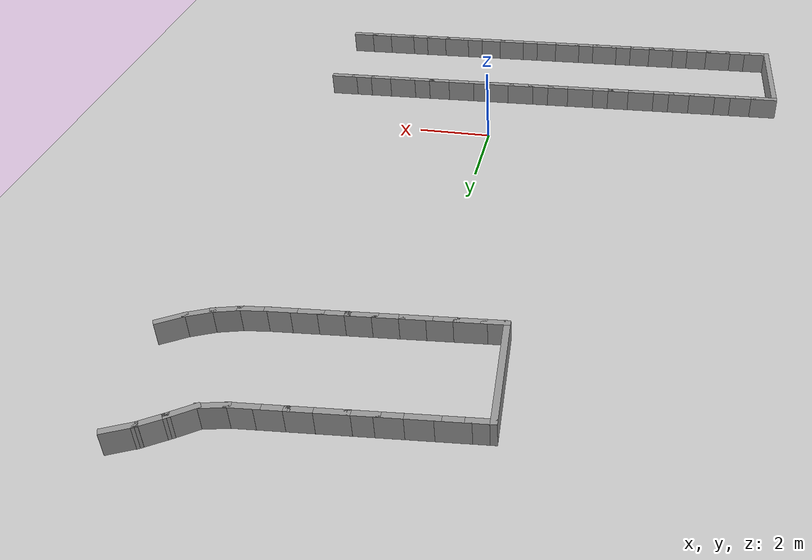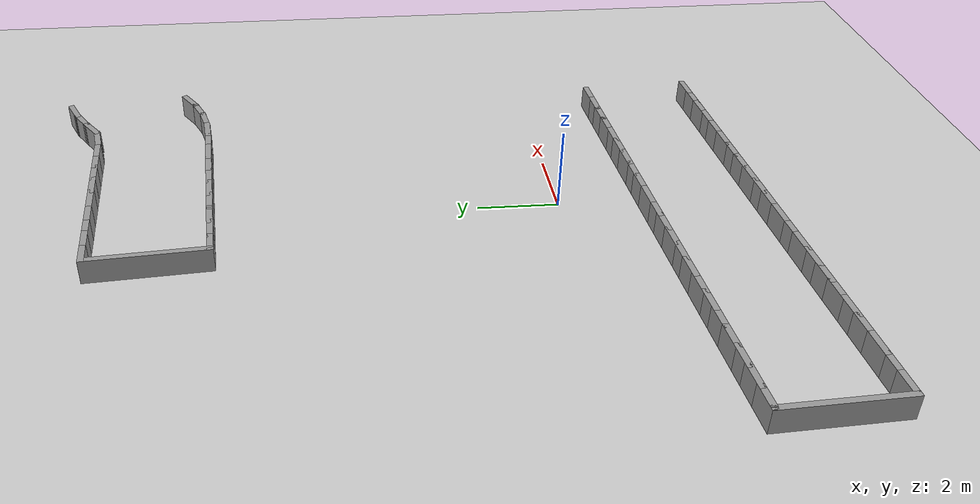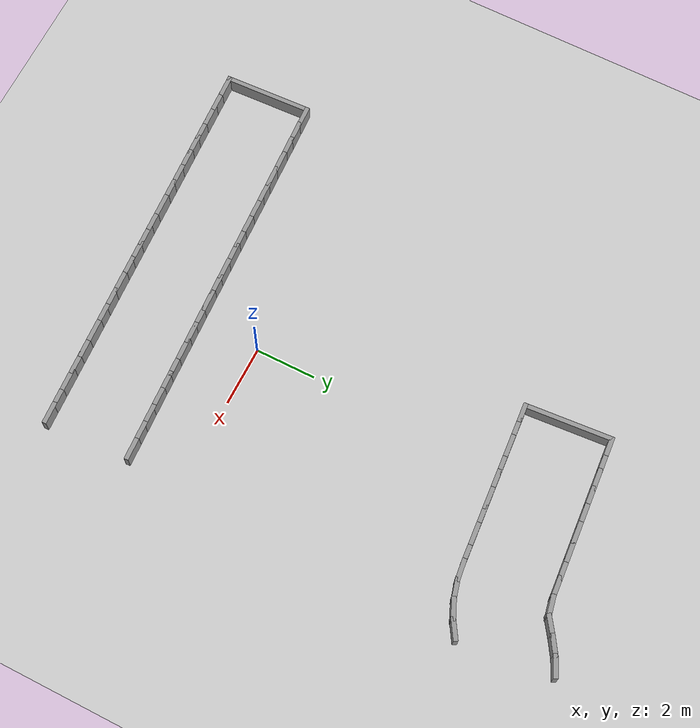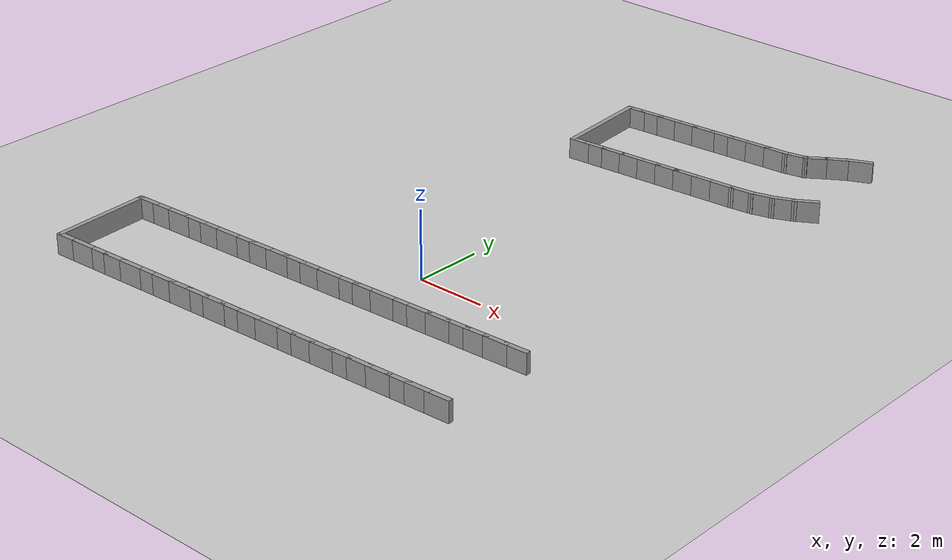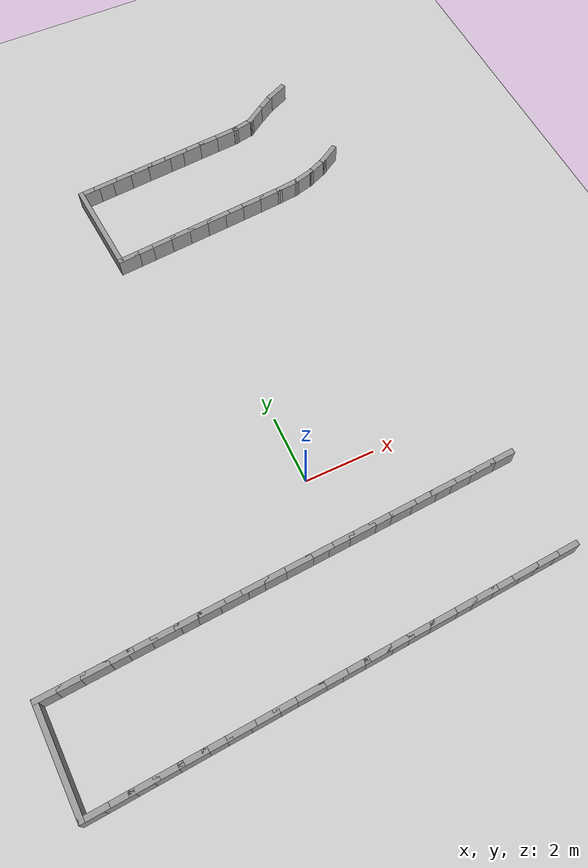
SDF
<sdf version="1.7">
 <world name="default">
  <model name="ground_plane">
   <static>1</static>
   <link name="link">
    <collision name="collision">
     <geometry><plane><normal>0 0 1</normal><size>100 100</size></plane></geometry>
     <surface><friction><ode><mu>100</mu><mu2>50</mu2></ode></friction></surface>
    </collision>
    <visual name="visual">
     <cast_shadows>0</cast_shadows>
     <geometry><plane><normal>0 0 1</normal><size>100 100</size></plane></geometry>
     <material>
      <script><uri>file://media/materials/scripts/gazebo.material</uri><name>Gazebo/Grey</name></script>
     </material>
    </visual>
   </link>
  </model>
  <model name="rand_turn_09">
   <link name="Wall_0">
    <collision name="Wall_0_Collision">
     <geometry><box><size>0.7500 0.1500 0.6000</size></box></geometry>
     <pose>0 0 0.3000 0 -0 0</pose>
    </collision>
    <visual name="Wall_0_Visual">
     <pose>0 0 0.3000 0 -0 0</pose>
     <geometry><box><size>0.7500 0.1500 0.6000</size></box></geometry>
     <material>
      <script><uri>file://media/materials/scripts/gazebo.material</uri><name>Gazebo/Grey</name></script>
      <ambient>1 1 1 1</ambient>
     </material>
    </visual>
    <pose>-7.8035 -2.3943 0 0 -0 0.04657</pose>
   </link>
   <link name="Wall_1">
    <collision name="Wall_1_Collision">
     <geometry><box><size>0.7500 0.1500 0.6000</size></box></geometry>
     <pose>0 0 0.3000 0 -0 0</pose>
    </collision>
    <visual name="Wall_1_Visual">
     <pose>0 0 0.3000 0 -0 0</pose>
     <geometry><box><size>0.7500 0.1500 0.6000</size></box></geometry>
     <material>
      <script><uri>file://media/materials/scripts/gazebo.material</uri><name>Gazebo/Grey</name></script>
      <ambient>1 1 1 1</ambient>
     </material>
    </visual>
    <pose>-7.2041 -2.3664 0 0 -0 0.04657</pose>
   </link>
   <link name="Wall_2">
    <collision name="Wall_2_Collision">
     <geometry><box><size>0.7500 0.1500 0.6000</size></box></geometry>
     <pose>0 0 0.3000 0 -0 0</pose>
    </collision>
    <visual name="Wall_2_Visual">
     <pose>0 0 0.3000 0 -0 0</pose>
     <geometry><box><size>0.7500 0.1500 0.6000</size></box></geometry>
     <material>
      <script><uri>file://media/materials/scripts/gazebo.material</uri><name>Gazebo/Grey</name></script>
      <ambient>1 1 1 1</ambient>
     </material>
    </visual>
    <pose>-6.6048 -2.3385 0 0 -0 0.04657</pose>
   </link>
   <link name="Wall_3">
    <collision name="Wall_3_Collision">
     <geometry><box><size>0.7500 0.1500 0.6000</size></box></geometry>
     <pose>0 0 0.3000 0 -0 0</pose>
    </collision>
    <visual name="Wall_3_Visual">
     <pose>0 0 0.3000 0 -0 0</pose>
     <geometry><box><size>0.7500 0.1500 0.6000</size></box></geometry>
     <material>
      <script><uri>file://media/materials/scripts/gazebo.material</uri><name>Gazebo/Grey</name></script>
      <ambient>1 1 1 1</ambient>
     </material>
    </visual>
    <pose>-6.0054 -2.3105 0 0 -0 0.04657</pose>
   </link>
   <link name="Wall_4">
    <collision name="Wall_4_Collision">
     <geometry><box><size>0.7500 0.1500 0.6000</size></box></geometry>
     <pose>0 0 0.3000 0 -0 0</pose>
    </collision>
    <visual name="Wall_4_Visual">
     <pose>0 0 0.3000 0 -0 0</pose>
     <geometry><box><size>0.7500 0.1500 0.6000</size></box></geometry>
     <material>
      <script><uri>file://media/materials/scripts/gazebo.material</uri><name>Gazebo/Grey</name></script>
      <ambient>1 1 1 1</ambient>
     </material>
    </visual>
    <pose>-5.4061 -2.2826 0 0 -0 0.04657</pose>
   </link>
   <link name="Wall_5">
    <collision name="Wall_5_Collision">
     <geometry><box><size>0.7500 0.1500 0.6000</size></box></geometry>
     <pose>0 0 0.3000 0 -0 0</pose>
    </collision>
    <visual name="Wall_5_Visual">
     <pose>0 0 0.3000 0 -0 0</pose>
     <geometry><box><size>0.7500 0.1500 0.6000</size></box></geometry>
     <material>
      <script><uri>file://media/materials/scripts/gazebo.material</uri><name>Gazebo/Grey</name></script>
      <ambient>1 1 1 1</ambient>
     </material>
    </visual>
    <pose>-4.8067 -2.2547 0 0 -0 0.04657</pose>
   </link>
   <link name="Wall_6">
    <collision name="Wall_6_Collision">
     <geometry><box><size>0.7500 0.1500 0.6000</size></box></geometry>
     <pose>0 0 0.3000 0 -0 0</pose>
    </collision>
    <visual name="Wall_6_Visual">
     <pose>0 0 0.3000 0 -0 0</pose>
     <geometry><box><size>0.7500 0.1500 0.6000</size></box></geometry>
     <material>
      <script><uri>file://media/materials/scripts/gazebo.material</uri><name>Gazebo/Grey</name></script>
      <ambient>1 1 1 1</ambient>
     </material>
    </visual>
    <pose>-4.2074 -2.2267 0 0 -0 0.04657</pose>
   </link>
   <link name="Wall_7">
    <collision name="Wall_7_Collision">
     <geometry><box><size>0.7500 0.1500 0.6000</size></box></geometry>
     <pose>0 0 0.3000 0 -0 0</pose>
    </collision>
    <visual name="Wall_7_Visual">
     <pose>0 0 0.3000 0 -0 0</pose>
     <geometry><box><size>0.7500 0.1500 0.6000</size></box></geometry>
     <material>
      <script><uri>file://media/materials/scripts/gazebo.material</uri><name>Gazebo/Grey</name></script>
      <ambient>1 1 1 1</ambient>
     </material>
    </visual>
    <pose>-3.6080 -2.1988 0 0 -0 0.04657</pose>
   </link>
   <link name="Wall_8">
    <collision name="Wall_8_Collision">
     <geometry><box><size>0.7500 0.1500 0.6000</size></box></geometry>
     <pose>0 0 0.3000 0 -0 0</pose>
    </collision>
    <visual name="Wall_8_Visual">
     <pose>0 0 0.3000 0 -0 0</pose>
     <geometry><box><size>0.7500 0.1500 0.6000</size></box></geometry>
     <material>
      <script><uri>file://media/materials/scripts/gazebo.material</uri><name>Gazebo/Grey</name></script>
      <ambient>1 1 1 1</ambient>
     </material>
    </visual>
    <pose>-3.0087 -2.1709 0 0 -0 0.04657</pose>
   </link>
   <link name="Wall_9">
    <collision name="Wall_9_Collision">
     <geometry><box><size>0.7500 0.1500 0.6000</size></box></geometry>
     <pose>0 0 0.3000 0 -0 0</pose>
    </collision>
    <visual name="Wall_9_Visual">
     <pose>0 0 0.3000 0 -0 0</pose>
     <geometry><box><size>0.7500 0.1500 0.6000</size></box></geometry>
     <material>
      <script><uri>file://media/materials/scripts/gazebo.material</uri><name>Gazebo/Grey</name></script>
      <ambient>1 1 1 1</ambient>
     </material>
    </visual>
    <pose>-2.4093 -2.1429 0 0 -0 0.04657</pose>
   </link>
   <link name="Wall_10">
    <collision name="Wall_10_Collision">
     <geometry><box><size>0.7500 0.1500 0.6000</size></box></geometry>
     <pose>0 0 0.3000 0 -0 0</pose>
    </collision>
    <visual name="Wall_10_Visual">
     <pose>0 0 0.3000 0 -0 0</pose>
     <geometry><box><size>0.7500 0.1500 0.6000</size></box></geometry>
     <material>
      <script><uri>file://media/materials/scripts/gazebo.material</uri><name>Gazebo/Grey</name></script>
      <ambient>1 1 1 1</ambient>
     </material>
    </visual>
    <pose>-1.8100 -2.1150 0 0 -0 0.04657</pose>
   </link>
   <link name="Wall_11">
    <collision name="Wall_11_Collision">
     <geometry><box><size>0.7500 0.1500 0.6000</size></box></geometry>
     <pose>0 0 0.3000 0 -0 0</pose>
    </collision>
    <visual name="Wall_11_Visual">
     <pose>0 0 0.3000 0 -0 0</pose>
     <geometry><box><size>0.7500 0.1500 0.6000</size></box></geometry>
     <material>
      <script><uri>file://media/materials/scripts/gazebo.material</uri><name>Gazebo/Grey</name></script>
      <ambient>1 1 1 1</ambient>
     </material>
    </visual>
    <pose>-1.2106 -2.0871 0 0 -0 0.04657</pose>
   </link>
   <link name="Wall_12">
    <collision name="Wall_12_Collision">
     <geometry><box><size>0.7500 0.1500 0.6000</size></box></geometry>
     <pose>0 0 0.3000 0 -0 0</pose>
    </collision>
    <visual name="Wall_12_Visual">
     <pose>0 0 0.3000 0 -0 0</pose>
     <geometry><box><size>0.7500 0.1500 0.6000</size></box></geometry>
     <material>
      <script><uri>file://media/materials/scripts/gazebo.material</uri><name>Gazebo/Grey</name></script>
      <ambient>1 1 1 1</ambient>
     </material>
    </visual>
    <pose>-0.6113 -2.0591 0 0 -0 0.04657</pose>
   </link>
   <link name="Wall_13">
    <collision name="Wall_13_Collision">
     <geometry><box><size>0.7500 0.1500 0.6000</size></box></geometry>
     <pose>0 0 0.3000 0 -0 0</pose>
    </collision>
    <visual name="Wall_13_Visual">
     <pose>0 0 0.3000 0 -0 0</pose>
     <geometry><box><size>0.7500 0.1500 0.6000</size></box></geometry>
     <material>
      <script><uri>file://media/materials/scripts/gazebo.material</uri><name>Gazebo/Grey</name></script>
      <ambient>1 1 1 1</ambient>
     </material>
    </visual>
    <pose>-0.0119 -2.0312 0 0 -0 0.04657</pose>
   </link>
   <link name="Wall_14">
    <collision name="Wall_14_Collision">
     <geometry><box><size>0.7500 0.1500 0.6000</size></box></geometry>
     <pose>0 0 0.3000 0 -0 0</pose>
    </collision>
    <visual name="Wall_14_Visual">
     <pose>0 0 0.3000 0 -0 0</pose>
     <geometry><box><size>0.7500 0.1500 0.6000</size></box></geometry>
     <material>
      <script><uri>file://media/materials/scripts/gazebo.material</uri><name>Gazebo/Grey</name></script>
      <ambient>1 1 1 1</ambient>
     </material>
    </visual>
    <pose>0.5874 -2.0033 0 0 -0 0.04657</pose>
   </link>
   <link name="Wall_15">
    <collision name="Wall_15_Collision">
     <geometry><box><size>0.7500 0.1500 0.6000</size></box></geometry>
     <pose>0 0 0.3000 0 -0 0</pose>
    </collision>
    <visual name="Wall_15_Visual">
     <pose>0 0 0.3000 0 -0 0</pose>
     <geometry><box><size>0.7500 0.1500 0.6000</size></box></geometry>
     <material>
      <script><uri>file://media/materials/scripts/gazebo.material</uri><name>Gazebo/Grey</name></script>
      <ambient>1 1 1 1</ambient>
     </material>
    </visual>
    <pose>1.1868 -1.9753 0 0 -0 0.04657</pose>
   </link>
   <link name="Wall_16">
    <collision name="Wall_16_Collision">
     <geometry><box><size>0.7500 0.1500 0.6000</size></box></geometry>
     <pose>0 0 0.3000 0 -0 0</pose>
    </collision>
    <visual name="Wall_16_Visual">
     <pose>0 0 0.3000 0 -0 0</pose>
     <geometry><box><size>0.7500 0.1500 0.6000</size></box></geometry>
     <material>
      <script><uri>file://media/materials/scripts/gazebo.material</uri><name>Gazebo/Grey</name></script>
      <ambient>1 1 1 1</ambient>
     </material>
    </visual>
    <pose>1.7861 -1.9474 0 0 -0 0.04657</pose>
   </link>
   <link name="Wall_17">
    <collision name="Wall_17_Collision">
     <geometry><box><size>0.7500 0.1500 0.6000</size></box></geometry>
     <pose>0 0 0.3000 0 -0 0</pose>
    </collision>
    <visual name="Wall_17_Visual">
     <pose>0 0 0.3000 0 -0 0</pose>
     <geometry><box><size>0.7500 0.1500 0.6000</size></box></geometry>
     <material>
      <script><uri>file://media/materials/scripts/gazebo.material</uri><name>Gazebo/Grey</name></script>
      <ambient>1 1 1 1</ambient>
     </material>
    </visual>
    <pose>2.3855 -1.9195 0 0 -0 0.04657</pose>
   </link>
   <link name="Wall_18">
    <collision name="Wall_18_Collision">
     <geometry><box><size>0.7500 0.1500 0.6000</size></box></geometry>
     <pose>0 0 0.3000 0 -0 0</pose>
    </collision>
    <visual name="Wall_18_Visual">
     <pose>0 0 0.3000 0 -0 0</pose>
     <geometry><box><size>0.7500 0.1500 0.6000</size></box></geometry>
     <material>
      <script><uri>file://media/materials/scripts/gazebo.material</uri><name>Gazebo/Grey</name></script>
      <ambient>1 1 1 1</ambient>
     </material>
    </visual>
    <pose>2.9848 -1.8915 0 0 -0 0.04657</pose>
   </link>
   <link name="Wall_19">
    <collision name="Wall_19_Collision">
     <geometry><box><size>0.7500 0.1500 0.6000</size></box></geometry>
     <pose>0 0 0.3000 0 -0 0</pose>
    </collision>
    <visual name="Wall_19_Visual">
     <pose>0 0 0.3000 0 -0 0</pose>
     <geometry><box><size>0.7500 0.1500 0.6000</size></box></geometry>
     <material>
      <script><uri>file://media/materials/scripts/gazebo.material</uri><name>Gazebo/Grey</name></script>
      <ambient>1 1 1 1</ambient>
     </material>
    </visual>
    <pose>3.5842 -1.8636 0 0 -0 0.04657</pose>
   </link>
   <link name="Wall_20">
    <collision name="Wall_20_Collision">
     <geometry><box><size>0.7500 0.1500 0.6000</size></box></geometry>
     <pose>0 0 0.3000 0 -0 0</pose>
    </collision>
    <visual name="Wall_20_Visual">
     <pose>0 0 0.3000 0 -0 0</pose>
     <geometry><box><size>0.7500 0.1500 0.6000</size></box></geometry>
     <material>
      <script><uri>file://media/materials/scripts/gazebo.material</uri><name>Gazebo/Grey</name></script>
      <ambient>1 1 1 1</ambient>
     </material>
    </visual>
    <pose>4.1835 -1.8357 0 0 -0 0.04657</pose>
   </link>
   <link name="Wall_21">
    <collision name="Wall_21_Collision">
     <geometry><box><size>0.7500 0.1500 0.6000</size></box></geometry>
     <pose>0 0 0.3000 0 -0 0</pose>
    </collision>
    <visual name="Wall_21_Visual">
     <pose>0 0 0.3000 0 -0 0</pose>
     <geometry><box><size>0.7500 0.1500 0.6000</size></box></geometry>
     <material>
      <script><uri>file://media/materials/scripts/gazebo.material</uri><name>Gazebo/Grey</name></script>
      <ambient>1 1 1 1</ambient>
     </material>
    </visual>
    <pose>4.7829 -1.8077 0 0 -0 0.04657</pose>
   </link>
   <link name="Wall_50">
    <collision name="Wall_50_Collision">
     <geometry><box><size>0.7494 0.1500 0.6000</size></box></geometry>
     <pose>0 0 0.3000 0 -0 0</pose>
    </collision>
    <visual name="Wall_50_Visual">
     <pose>0 0 0.3000 0 -0 0</pose>
     <geometry><box><size>0.7494 0.1500 0.6000</size></box></geometry>
     <material>
      <script><uri>file://media/materials/scripts/gazebo.material</uri><name>Gazebo/Grey</name></script>
      <ambient>1 1 1 1</ambient>
     </material>
    </visual>
    <pose>5.2873 9.3937 0 0 -0 -2.58797</pose>
   </link>
   <link name="Wall_51">
    <collision name="Wall_51_Collision">
     <geometry><box><size>0.7494 0.1500 0.6000</size></box></geometry>
     <pose>0 0 0.3000 0 -0 0</pose>
    </collision>
    <visual name="Wall_51_Visual">
     <pose>0 0 0.3000 0 -0 0</pose>
     <geometry><box><size>0.7494 0.1500 0.6000</size></box></geometry>
     <material>
      <script><uri>file://media/materials/scripts/gazebo.material</uri><name>Gazebo/Grey</name></script>
      <ambient>1 1 1 1</ambient>
     </material>
    </visual>
    <pose>4.7570 9.1177 0 0 -0 -2.73549</pose>
   </link>
   <link name="Wall_52">
    <collision name="Wall_52_Collision">
     <geometry><box><size>0.7494 0.1500 0.6000</size></box></geometry>
     <pose>0 0 0.3000 0 -0 0</pose>
    </collision>
    <visual name="Wall_52_Visual">
     <pose>0 0 0.3000 0 -0 0</pose>
     <geometry><box><size>0.7494 0.1500 0.6000</size></box></geometry>
     <material>
      <script><uri>file://media/materials/scripts/gazebo.material</uri><name>Gazebo/Grey</name></script>
      <ambient>1 1 1 1</ambient>
     </material>
    </visual>
    <pose>4.1920 8.9227 0 0 -0 -2.88301</pose>
   </link>
   <link name="Wall_53">
    <collision name="Wall_53_Collision">
     <geometry><box><size>0.7496 0.1500 0.6000</size></box></geometry>
     <pose>0 0 0.3000 0 -0 0</pose>
    </collision>
    <visual name="Wall_53_Visual">
     <pose>0 0 0.3000 0 -0 0</pose>
     <geometry><box><size>0.7496 0.1500 0.6000</size></box></geometry>
     <material>
      <script><uri>file://media/materials/scripts/gazebo.material</uri><name>Gazebo/Grey</name></script>
      <ambient>1 1 1 1</ambient>
     </material>
    </visual>
    <pose>3.6045 8.8110 0 0 -0 -3.02437</pose>
   </link>
   <link name="Wall_54">
    <collision name="Wall_54_Collision">
     <geometry><box><size>0.7500 0.1500 0.6000</size></box></geometry>
     <pose>0 0 0.3000 0 -0 0</pose>
    </collision>
    <visual name="Wall_54_Visual">
     <pose>0 0 0.3000 0 -0 0</pose>
     <geometry><box><size>0.7500 0.1500 0.6000</size></box></geometry>
     <material>
      <script><uri>file://media/materials/scripts/gazebo.material</uri><name>Gazebo/Grey</name></script>
      <ambient>1 1 1 1</ambient>
     </material>
    </visual>
    <pose>3.0077 8.7528 0 0 -0 -3.06450</pose>
   </link>
   <link name="Wall_55">
    <collision name="Wall_55_Collision">
     <geometry><box><size>0.7500 0.1500 0.6000</size></box></geometry>
     <pose>0 0 0.3000 0 -0 0</pose>
    </collision>
    <visual name="Wall_55_Visual">
     <pose>0 0 0.3000 0 -0 0</pose>
     <geometry><box><size>0.7500 0.1500 0.6000</size></box></geometry>
     <material>
      <script><uri>file://media/materials/scripts/gazebo.material</uri><name>Gazebo/Grey</name></script>
      <ambient>1 1 1 1</ambient>
     </material>
    </visual>
    <pose>2.4095 8.7066 0 0 -0 -3.06450</pose>
   </link>
   <link name="Wall_56">
    <collision name="Wall_56_Collision">
     <geometry><box><size>0.7500 0.1500 0.6000</size></box></geometry>
     <pose>0 0 0.3000 0 -0 0</pose>
    </collision>
    <visual name="Wall_56_Visual">
     <pose>0 0 0.3000 0 -0 0</pose>
     <geometry><box><size>0.7500 0.1500 0.6000</size></box></geometry>
     <material>
      <script><uri>file://media/materials/scripts/gazebo.material</uri><name>Gazebo/Grey</name></script>
      <ambient>1 1 1 1</ambient>
     </material>
    </visual>
    <pose>1.8112 8.6604 0 0 -0 -3.06450</pose>
   </link>
   <link name="Wall_57">
    <collision name="Wall_57_Collision">
     <geometry><box><size>0.7500 0.1500 0.6000</size></box></geometry>
     <pose>0 0 0.3000 0 -0 0</pose>
    </collision>
    <visual name="Wall_57_Visual">
     <pose>0 0 0.3000 0 -0 0</pose>
     <geometry><box><size>0.7500 0.1500 0.6000</size></box></geometry>
     <material>
      <script><uri>file://media/materials/scripts/gazebo.material</uri><name>Gazebo/Grey</name></script>
      <ambient>1 1 1 1</ambient>
     </material>
    </visual>
    <pose>1.2130 8.6142 0 0 -0 -3.06450</pose>
   </link>
   <link name="Wall_58">
    <collision name="Wall_58_Collision">
     <geometry><box><size>0.7500 0.1500 0.6000</size></box></geometry>
     <pose>0 0 0.3000 0 -0 0</pose>
    </collision>
    <visual name="Wall_58_Visual">
     <pose>0 0 0.3000 0 -0 0</pose>
     <geometry><box><size>0.7500 0.1500 0.6000</size></box></geometry>
     <material>
      <script><uri>file://media/materials/scripts/gazebo.material</uri><name>Gazebo/Grey</name></script>
      <ambient>1 1 1 1</ambient>
     </material>
    </visual>
    <pose>0.6148 8.5680 0 0 -0 -3.06450</pose>
   </link>
   <link name="Wall_59">
    <collision name="Wall_59_Collision">
     <geometry><box><size>0.7500 0.1500 0.6000</size></box></geometry>
     <pose>0 0 0.3000 0 -0 0</pose>
    </collision>
    <visual name="Wall_59_Visual">
     <pose>0 0 0.3000 0 -0 0</pose>
     <geometry><box><size>0.7500 0.1500 0.6000</size></box></geometry>
     <material>
      <script><uri>file://media/materials/scripts/gazebo.material</uri><name>Gazebo/Grey</name></script>
      <ambient>1 1 1 1</ambient>
     </material>
    </visual>
    <pose>0.0166 8.5218 0 0 -0 -3.06450</pose>
   </link>
   <link name="Wall_60">
    <collision name="Wall_60_Collision">
     <geometry><box><size>0.7500 0.1500 0.6000</size></box></geometry>
     <pose>0 0 0.3000 0 -0 0</pose>
    </collision>
    <visual name="Wall_60_Visual">
     <pose>0 0 0.3000 0 -0 0</pose>
     <geometry><box><size>0.7500 0.1500 0.6000</size></box></geometry>
     <material>
      <script><uri>file://media/materials/scripts/gazebo.material</uri><name>Gazebo/Grey</name></script>
      <ambient>1 1 1 1</ambient>
     </material>
    </visual>
    <pose>-0.5816 8.4756 0 0 -0 -3.06450</pose>
   </link>
   <link name="Wall_61">
    <collision name="Wall_61_Collision">
     <geometry><box><size>0.7500 0.1500 0.6000</size></box></geometry>
     <pose>0 0 0.3000 0 -0 0</pose>
    </collision>
    <visual name="Wall_61_Visual">
     <pose>0 0 0.3000 0 -0 0</pose>
     <geometry><box><size>0.7500 0.1500 0.6000</size></box></geometry>
     <material>
      <script><uri>file://media/materials/scripts/gazebo.material</uri><name>Gazebo/Grey</name></script>
      <ambient>1 1 1 1</ambient>
     </material>
    </visual>
    <pose>-1.1798 8.4294 0 0 -0 -3.06450</pose>
   </link>
   <link name="Wall_62">
    <collision name="Wall_62_Collision">
     <geometry><box><size>0.6529 0.1500 0.6000</size></box></geometry>
     <pose>0 0 0.3000 0 -0 0</pose>
    </collision>
    <visual name="Wall_62_Visual">
     <pose>0 0 0.3000 0 -0 0</pose>
     <geometry><box><size>0.6529 0.1500 0.6000</size></box></geometry>
     <material>
      <script><uri>file://media/materials/scripts/gazebo.material</uri><name>Gazebo/Grey</name></script>
      <ambient>1 1 1 1</ambient>
     </material>
    </visual>
    <pose>-1.7297 8.3869 0 0 -0 -3.06450</pose>
   </link>
   <link name="Wall_63">
    <collision name="Wall_63_Collision">
     <geometry><box><size>0.7500 0.1500 0.6000</size></box></geometry>
     <pose>0 0 0.3000 0 -0 0</pose>
    </collision>
    <visual name="Wall_63_Visual">
     <pose>0 0 0.3000 0 -0 0</pose>
     <geometry><box><size>0.7500 0.1500 0.6000</size></box></geometry>
     <material>
      <script><uri>file://media/materials/scripts/gazebo.material</uri><name>Gazebo/Grey</name></script>
      <ambient>1 1 1 1</ambient>
     </material>
    </visual>
    <pose>-7.6715 -5.2264 0 0 -0 0.04657</pose>
   </link>
   <link name="Wall_64">
    <collision name="Wall_64_Collision">
     <geometry><box><size>0.7500 0.1500 0.6000</size></box></geometry>
     <pose>0 0 0.3000 0 -0 0</pose>
    </collision>
    <visual name="Wall_64_Visual">
     <pose>0 0 0.3000 0 -0 0</pose>
     <geometry><box><size>0.7500 0.1500 0.6000</size></box></geometry>
     <material>
      <script><uri>file://media/materials/scripts/gazebo.material</uri><name>Gazebo/Grey</name></script>
      <ambient>1 1 1 1</ambient>
     </material>
    </visual>
    <pose>-7.0721 -5.1985 0 0 -0 0.04657</pose>
   </link>
   <link name="Wall_65">
    <collision name="Wall_65_Collision">
     <geometry><box><size>0.7500 0.1500 0.6000</size></box></geometry>
     <pose>0 0 0.3000 0 -0 0</pose>
    </collision>
    <visual name="Wall_65_Visual">
     <pose>0 0 0.3000 0 -0 0</pose>
     <geometry><box><size>0.7500 0.1500 0.6000</size></box></geometry>
     <material>
      <script><uri>file://media/materials/scripts/gazebo.material</uri><name>Gazebo/Grey</name></script>
      <ambient>1 1 1 1</ambient>
     </material>
    </visual>
    <pose>-6.4728 -5.1705 0 0 -0 0.04657</pose>
   </link>
   <link name="Wall_66">
    <collision name="Wall_66_Collision">
     <geometry><box><size>0.7500 0.1500 0.6000</size></box></geometry>
     <pose>0 0 0.3000 0 -0 0</pose>
    </collision>
    <visual name="Wall_66_Visual">
     <pose>0 0 0.3000 0 -0 0</pose>
     <geometry><box><size>0.7500 0.1500 0.6000</size></box></geometry>
     <material>
      <script><uri>file://media/materials/scripts/gazebo.material</uri><name>Gazebo/Grey</name></script>
      <ambient>1 1 1 1</ambient>
     </material>
    </visual>
    <pose>-5.8734 -5.1426 0 0 -0 0.04657</pose>
   </link>
   <link name="Wall_67">
    <collision name="Wall_67_Collision">
     <geometry><box><size>0.7500 0.1500 0.6000</size></box></geometry>
     <pose>0 0 0.3000 0 -0 0</pose>
    </collision>
    <visual name="Wall_67_Visual">
     <pose>0 0 0.3000 0 -0 0</pose>
     <geometry><box><size>0.7500 0.1500 0.6000</size></box></geometry>
     <material>
      <script><uri>file://media/materials/scripts/gazebo.material</uri><name>Gazebo/Grey</name></script>
      <ambient>1 1 1 1</ambient>
     </material>
    </visual>
    <pose>-5.2741 -5.1147 0 0 -0 0.04657</pose>
   </link>
   <link name="Wall_68">
    <collision name="Wall_68_Collision">
     <geometry><box><size>0.7500 0.1500 0.6000</size></box></geometry>
     <pose>0 0 0.3000 0 -0 0</pose>
    </collision>
    <visual name="Wall_68_Visual">
     <pose>0 0 0.3000 0 -0 0</pose>
     <geometry><box><size>0.7500 0.1500 0.6000</size></box></geometry>
     <material>
      <script><uri>file://media/materials/scripts/gazebo.material</uri><name>Gazebo/Grey</name></script>
      <ambient>1 1 1 1</ambient>
     </material>
    </visual>
    <pose>-4.6747 -5.0867 0 0 -0 0.04657</pose>
   </link>
   <link name="Wall_69">
    <collision name="Wall_69_Collision">
     <geometry><box><size>0.7500 0.1500 0.6000</size></box></geometry>
     <pose>0 0 0.3000 0 -0 0</pose>
    </collision>
    <visual name="Wall_69_Visual">
     <pose>0 0 0.3000 0 -0 0</pose>
     <geometry><box><size>0.7500 0.1500 0.6000</size></box></geometry>
     <material>
      <script><uri>file://media/materials/scripts/gazebo.material</uri><name>Gazebo/Grey</name></script>
      <ambient>1 1 1 1</ambient>
     </material>
    </visual>
    <pose>-4.0754 -5.0588 0 0 -0 0.04657</pose>
   </link>
   <link name="Wall_70">
    <collision name="Wall_70_Collision">
     <geometry><box><size>0.7500 0.1500 0.6000</size></box></geometry>
     <pose>0 0 0.3000 0 -0 0</pose>
    </collision>
    <visual name="Wall_70_Visual">
     <pose>0 0 0.3000 0 -0 0</pose>
     <geometry><box><size>0.7500 0.1500 0.6000</size></box></geometry>
     <material>
      <script><uri>file://media/materials/scripts/gazebo.material</uri><name>Gazebo/Grey</name></script>
      <ambient>1 1 1 1</ambient>
     </material>
    </visual>
    <pose>-3.4760 -5.0309 0 0 -0 0.04657</pose>
   </link>
   <link name="Wall_71">
    <collision name="Wall_71_Collision">
     <geometry><box><size>0.7500 0.1500 0.6000</size></box></geometry>
     <pose>0 0 0.3000 0 -0 0</pose>
    </collision>
    <visual name="Wall_71_Visual">
     <pose>0 0 0.3000 0 -0 0</pose>
     <geometry><box><size>0.7500 0.1500 0.6000</size></box></geometry>
     <material>
      <script><uri>file://media/materials/scripts/gazebo.material</uri><name>Gazebo/Grey</name></script>
      <ambient>1 1 1 1</ambient>
     </material>
    </visual>
    <pose>-2.8767 -5.0029 0 0 -0 0.04657</pose>
   </link>
   <link name="Wall_72">
    <collision name="Wall_72_Collision">
     <geometry><box><size>0.7500 0.1500 0.6000</size></box></geometry>
     <pose>0 0 0.3000 0 -0 0</pose>
    </collision>
    <visual name="Wall_72_Visual">
     <pose>0 0 0.3000 0 -0 0</pose>
     <geometry><box><size>0.7500 0.1500 0.6000</size></box></geometry>
     <material>
      <script><uri>file://media/materials/scripts/gazebo.material</uri><name>Gazebo/Grey</name></script>
      <ambient>1 1 1 1</ambient>
     </material>
    </visual>
    <pose>-2.2773 -4.9750 0 0 -0 0.04657</pose>
   </link>
   <link name="Wall_73">
    <collision name="Wall_73_Collision">
     <geometry><box><size>0.7500 0.1500 0.6000</size></box></geometry>
     <pose>0 0 0.3000 0 -0 0</pose>
    </collision>
    <visual name="Wall_73_Visual">
     <pose>0 0 0.3000 0 -0 0</pose>
     <geometry><box><size>0.7500 0.1500 0.6000</size></box></geometry>
     <material>
      <script><uri>file://media/materials/scripts/gazebo.material</uri><name>Gazebo/Grey</name></script>
      <ambient>1 1 1 1</ambient>
     </material>
    </visual>
    <pose>-1.6780 -4.9470 0 0 -0 0.04657</pose>
   </link>
   <link name="Wall_74">
    <collision name="Wall_74_Collision">
     <geometry><box><size>0.7500 0.1500 0.6000</size></box></geometry>
     <pose>0 0 0.3000 0 -0 0</pose>
    </collision>
    <visual name="Wall_74_Visual">
     <pose>0 0 0.3000 0 -0 0</pose>
     <geometry><box><size>0.7500 0.1500 0.6000</size></box></geometry>
     <material>
      <script><uri>file://media/materials/scripts/gazebo.material</uri><name>Gazebo/Grey</name></script>
      <ambient>1 1 1 1</ambient>
     </material>
    </visual>
    <pose>-1.0786 -4.9191 0 0 -0 0.04657</pose>
   </link>
   <link name="Wall_75">
    <collision name="Wall_75_Collision">
     <geometry><box><size>0.7500 0.1500 0.6000</size></box></geometry>
     <pose>0 0 0.3000 0 -0 0</pose>
    </collision>
    <visual name="Wall_75_Visual">
     <pose>0 0 0.3000 0 -0 0</pose>
     <geometry><box><size>0.7500 0.1500 0.6000</size></box></geometry>
     <material>
      <script><uri>file://media/materials/scripts/gazebo.material</uri><name>Gazebo/Grey</name></script>
      <ambient>1 1 1 1</ambient>
     </material>
    </visual>
    <pose>-0.4793 -4.8912 0 0 -0 0.04657</pose>
   </link>
   <link name="Wall_76">
    <collision name="Wall_76_Collision">
     <geometry><box><size>0.7500 0.1500 0.6000</size></box></geometry>
     <pose>0 0 0.3000 0 -0 0</pose>
    </collision>
    <visual name="Wall_76_Visual">
     <pose>0 0 0.3000 0 -0 0</pose>
     <geometry><box><size>0.7500 0.1500 0.6000</size></box></geometry>
     <material>
      <script><uri>file://media/materials/scripts/gazebo.material</uri><name>Gazebo/Grey</name></script>
      <ambient>1 1 1 1</ambient>
     </material>
    </visual>
    <pose>0.1201 -4.8632 0 0 -0 0.04657</pose>
   </link>
   <link name="Wall_77">
    <collision name="Wall_77_Collision">
     <geometry><box><size>0.7500 0.1500 0.6000</size></box></geometry>
     <pose>0 0 0.3000 0 -0 0</pose>
    </collision>
    <visual name="Wall_77_Visual">
     <pose>0 0 0.3000 0 -0 0</pose>
     <geometry><box><size>0.7500 0.1500 0.6000</size></box></geometry>
     <material>
      <script><uri>file://media/materials/scripts/gazebo.material</uri><name>Gazebo/Grey</name></script>
      <ambient>1 1 1 1</ambient>
     </material>
    </visual>
    <pose>0.7194 -4.8353 0 0 -0 0.04657</pose>
   </link>
   <link name="Wall_78">
    <collision name="Wall_78_Collision">
     <geometry><box><size>0.7500 0.1500 0.6000</size></box></geometry>
     <pose>0 0 0.3000 0 -0 0</pose>
    </collision>
    <visual name="Wall_78_Visual">
     <pose>0 0 0.3000 0 -0 0</pose>
     <geometry><box><size>0.7500 0.1500 0.6000</size></box></geometry>
     <material>
      <script><uri>file://media/materials/scripts/gazebo.material</uri><name>Gazebo/Grey</name></script>
      <ambient>1 1 1 1</ambient>
     </material>
    </visual>
    <pose>1.3188 -4.8074 0 0 -0 0.04657</pose>
   </link>
   <link name="Wall_79">
    <collision name="Wall_79_Collision">
     <geometry><box><size>0.7500 0.1500 0.6000</size></box></geometry>
     <pose>0 0 0.3000 0 -0 0</pose>
    </collision>
    <visual name="Wall_79_Visual">
     <pose>0 0 0.3000 0 -0 0</pose>
     <geometry><box><size>0.7500 0.1500 0.6000</size></box></geometry>
     <material>
      <script><uri>file://media/materials/scripts/gazebo.material</uri><name>Gazebo/Grey</name></script>
      <ambient>1 1 1 1</ambient>
     </material>
    </visual>
    <pose>1.9181 -4.7794 0 0 -0 0.04657</pose>
   </link>
   <link name="Wall_80">
    <collision name="Wall_80_Collision">
     <geometry><box><size>0.7500 0.1500 0.6000</size></box></geometry>
     <pose>0 0 0.3000 0 -0 0</pose>
    </collision>
    <visual name="Wall_80_Visual">
     <pose>0 0 0.3000 0 -0 0</pose>
     <geometry><box><size>0.7500 0.1500 0.6000</size></box></geometry>
     <material>
      <script><uri>file://media/materials/scripts/gazebo.material</uri><name>Gazebo/Grey</name></script>
      <ambient>1 1 1 1</ambient>
     </material>
    </visual>
    <pose>2.5175 -4.7515 0 0 -0 0.04657</pose>
   </link>
   <link name="Wall_81">
    <collision name="Wall_81_Collision">
     <geometry><box><size>0.7500 0.1500 0.6000</size></box></geometry>
     <pose>0 0 0.3000 0 -0 0</pose>
    </collision>
    <visual name="Wall_81_Visual">
     <pose>0 0 0.3000 0 -0 0</pose>
     <geometry><box><size>0.7500 0.1500 0.6000</size></box></geometry>
     <material>
      <script><uri>file://media/materials/scripts/gazebo.material</uri><name>Gazebo/Grey</name></script>
      <ambient>1 1 1 1</ambient>
     </material>
    </visual>
    <pose>3.1168 -4.7236 0 0 -0 0.04657</pose>
   </link>
   <link name="Wall_82">
    <collision name="Wall_82_Collision">
     <geometry><box><size>0.7500 0.1500 0.6000</size></box></geometry>
     <pose>0 0 0.3000 0 -0 0</pose>
    </collision>
    <visual name="Wall_82_Visual">
     <pose>0 0 0.3000 0 -0 0</pose>
     <geometry><box><size>0.7500 0.1500 0.6000</size></box></geometry>
     <material>
      <script><uri>file://media/materials/scripts/gazebo.material</uri><name>Gazebo/Grey</name></script>
      <ambient>1 1 1 1</ambient>
     </material>
    </visual>
    <pose>3.7162 -4.6956 0 0 -0 0.04657</pose>
   </link>
   <link name="Wall_83">
    <collision name="Wall_83_Collision">
     <geometry><box><size>0.7500 0.1500 0.6000</size></box></geometry>
     <pose>0 0 0.3000 0 -0 0</pose>
    </collision>
    <visual name="Wall_83_Visual">
     <pose>0 0 0.3000 0 -0 0</pose>
     <geometry><box><size>0.7500 0.1500 0.6000</size></box></geometry>
     <material>
      <script><uri>file://media/materials/scripts/gazebo.material</uri><name>Gazebo/Grey</name></script>
      <ambient>1 1 1 1</ambient>
     </material>
    </visual>
    <pose>4.3155 -4.6677 0 0 -0 0.04657</pose>
   </link>
   <link name="Wall_84">
    <collision name="Wall_84_Collision">
     <geometry><box><size>0.7500 0.1500 0.6000</size></box></geometry>
     <pose>0 0 0.3000 0 -0 0</pose>
    </collision>
    <visual name="Wall_84_Visual">
     <pose>0 0 0.3000 0 -0 0</pose>
     <geometry><box><size>0.7500 0.1500 0.6000</size></box></geometry>
     <material>
      <script><uri>file://media/materials/scripts/gazebo.material</uri><name>Gazebo/Grey</name></script>
      <ambient>1 1 1 1</ambient>
     </material>
    </visual>
    <pose>4.9149 -4.6398 0 0 -0 0.04657</pose>
   </link>
   <link name="Wall_128">
    <collision name="Wall_128_Collision">
     <geometry><box><size>0.7496 0.1500 0.6000</size></box></geometry>
     <pose>0 0 0.3000 0 -0 0</pose>
    </collision>
    <visual name="Wall_128_Visual">
     <pose>0 0 0.3000 0 -0 0</pose>
     <geometry><box><size>0.7496 0.1500 0.6000</size></box></geometry>
     <material>
      <script><uri>file://media/materials/scripts/gazebo.material</uri><name>Gazebo/Grey</name></script>
      <ambient>1 1 1 1</ambient>
     </material>
    </visual>
    <pose>4.9364 12.5081 0 0 -0 -2.70785</pose>
   </link>
   <link name="Wall_129">
    <collision name="Wall_129_Collision">
     <geometry><box><size>0.7496 0.1500 0.6000</size></box></geometry>
     <pose>0 0 0.3000 0 -0 0</pose>
    </collision>
    <visual name="Wall_129_Visual">
     <pose>0 0 0.3000 0 -0 0</pose>
     <geometry><box><size>0.7496 0.1500 0.6000</size></box></geometry>
     <material>
      <script><uri>file://media/materials/scripts/gazebo.material</uri><name>Gazebo/Grey</name></script>
      <ambient>1 1 1 1</ambient>
     </material>
    </visual>
    <pose>4.4109 12.2219 0 0 -0 -2.57780</pose>
   </link>
   <link name="Wall_130">
    <collision name="Wall_130_Collision">
     <geometry><box><size>0.7483 0.1500 0.6000</size></box></geometry>
     <pose>0 0 0.3000 0 -0 0</pose>
    </collision>
    <visual name="Wall_130_Visual">
     <pose>0 0 0.3000 0 -0 0</pose>
     <geometry><box><size>0.7483 0.1500 0.6000</size></box></geometry>
     <material>
      <script><uri>file://media/materials/scripts/gazebo.material</uri><name>Gazebo/Grey</name></script>
      <ambient>1 1 1 1</ambient>
     </material>
    </visual>
    <pose>3.9113 11.8918 0 0 -0 -2.53763</pose>
   </link>
   <link name="Wall_131">
    <collision name="Wall_131_Collision">
     <geometry><box><size>0.7459 0.1500 0.6000</size></box></geometry>
     <pose>0 0 0.3000 0 -0 0</pose>
    </collision>
    <visual name="Wall_131_Visual">
     <pose>0 0 0.3000 0 -0 0</pose>
     <geometry><box><size>0.7459 0.1500 0.6000</size></box></geometry>
     <material>
      <script><uri>file://media/materials/scripts/gazebo.material</uri><name>Gazebo/Grey</name></script>
      <ambient>1 1 1 1</ambient>
     </material>
    </visual>
    <pose>3.3732 11.6620 0 0 -0 -2.93916</pose>
   </link>
   <link name="Wall_132">
    <collision name="Wall_132_Collision">
     <geometry><box><size>0.7500 0.1500 0.6000</size></box></geometry>
     <pose>0 0 0.3000 0 -0 0</pose>
    </collision>
    <visual name="Wall_132_Visual">
     <pose>0 0 0.3000 0 -0 0</pose>
     <geometry><box><size>0.7500 0.1500 0.6000</size></box></geometry>
     <material>
      <script><uri>file://media/materials/scripts/gazebo.material</uri><name>Gazebo/Grey</name></script>
      <ambient>1 1 1 1</ambient>
     </material>
    </visual>
    <pose>2.7822 11.5790 0 0 -0 -3.06450</pose>
   </link>
   <link name="Wall_133">
    <collision name="Wall_133_Collision">
     <geometry><box><size>0.7500 0.1500 0.6000</size></box></geometry>
     <pose>0 0 0.3000 0 -0 0</pose>
    </collision>
    <visual name="Wall_133_Visual">
     <pose>0 0 0.3000 0 -0 0</pose>
     <geometry><box><size>0.7500 0.1500 0.6000</size></box></geometry>
     <material>
      <script><uri>file://media/materials/scripts/gazebo.material</uri><name>Gazebo/Grey</name></script>
      <ambient>1 1 1 1</ambient>
     </material>
    </visual>
    <pose>2.1840 11.5328 0 0 -0 -3.06450</pose>
   </link>
   <link name="Wall_134">
    <collision name="Wall_134_Collision">
     <geometry><box><size>0.7500 0.1500 0.6000</size></box></geometry>
     <pose>0 0 0.3000 0 -0 0</pose>
    </collision>
    <visual name="Wall_134_Visual">
     <pose>0 0 0.3000 0 -0 0</pose>
     <geometry><box><size>0.7500 0.1500 0.6000</size></box></geometry>
     <material>
      <script><uri>file://media/materials/scripts/gazebo.material</uri><name>Gazebo/Grey</name></script>
      <ambient>1 1 1 1</ambient>
     </material>
    </visual>
    <pose>1.5858 11.4866 0 0 -0 -3.06450</pose>
   </link>
   <link name="Wall_135">
    <collision name="Wall_135_Collision">
     <geometry><box><size>0.7500 0.1500 0.6000</size></box></geometry>
     <pose>0 0 0.3000 0 -0 0</pose>
    </collision>
    <visual name="Wall_135_Visual">
     <pose>0 0 0.3000 0 -0 0</pose>
     <geometry><box><size>0.7500 0.1500 0.6000</size></box></geometry>
     <material>
      <script><uri>file://media/materials/scripts/gazebo.material</uri><name>Gazebo/Grey</name></script>
      <ambient>1 1 1 1</ambient>
     </material>
    </visual>
    <pose>0.9876 11.4404 0 0 -0 -3.06450</pose>
   </link>
   <link name="Wall_136">
    <collision name="Wall_136_Collision">
     <geometry><box><size>0.7500 0.1500 0.6000</size></box></geometry>
     <pose>0 0 0.3000 0 -0 0</pose>
    </collision>
    <visual name="Wall_136_Visual">
     <pose>0 0 0.3000 0 -0 0</pose>
     <geometry><box><size>0.7500 0.1500 0.6000</size></box></geometry>
     <material>
      <script><uri>file://media/materials/scripts/gazebo.material</uri><name>Gazebo/Grey</name></script>
      <ambient>1 1 1 1</ambient>
     </material>
    </visual>
    <pose>0.3893 11.3941 0 0 -0 -3.06450</pose>
   </link>
   <link name="Wall_137">
    <collision name="Wall_137_Collision">
     <geometry><box><size>0.7500 0.1500 0.6000</size></box></geometry>
     <pose>0 0 0.3000 0 -0 0</pose>
    </collision>
    <visual name="Wall_137_Visual">
     <pose>0 0 0.3000 0 -0 0</pose>
     <geometry><box><size>0.7500 0.1500 0.6000</size></box></geometry>
     <material>
      <script><uri>file://media/materials/scripts/gazebo.material</uri><name>Gazebo/Grey</name></script>
      <ambient>1 1 1 1</ambient>
     </material>
    </visual>
    <pose>-0.2089 11.3479 0 0 -0 -3.06450</pose>
   </link>
   <link name="Wall_138">
    <collision name="Wall_138_Collision">
     <geometry><box><size>0.7500 0.1500 0.6000</size></box></geometry>
     <pose>0 0 0.3000 0 -0 0</pose>
    </collision>
    <visual name="Wall_138_Visual">
     <pose>0 0 0.3000 0 -0 0</pose>
     <geometry><box><size>0.7500 0.1500 0.6000</size></box></geometry>
     <material>
      <script><uri>file://media/materials/scripts/gazebo.material</uri><name>Gazebo/Grey</name></script>
      <ambient>1 1 1 1</ambient>
     </material>
    </visual>
    <pose>-0.8071 11.3017 0 0 -0 -3.06450</pose>
   </link>
   <link name="Wall_139">
    <collision name="Wall_139_Collision">
     <geometry><box><size>0.7500 0.1500 0.6000</size></box></geometry>
     <pose>0 0 0.3000 0 -0 0</pose>
    </collision>
    <visual name="Wall_139_Visual">
     <pose>0 0 0.3000 0 -0 0</pose>
     <geometry><box><size>0.7500 0.1500 0.6000</size></box></geometry>
     <material>
      <script><uri>file://media/materials/scripts/gazebo.material</uri><name>Gazebo/Grey</name></script>
      <ambient>1 1 1 1</ambient>
     </material>
    </visual>
    <pose>-1.4053 11.2555 0 0 -0 -3.06450</pose>
   </link>
   <link name="Wall_140">
    <collision name="Wall_140_Collision">
     <geometry><box><size>0.6458 0.1500 0.6000</size></box></geometry>
     <pose>0 0 0.3000 0 -0 0</pose>
    </collision>
    <visual name="Wall_140_Visual">
     <pose>0 0 0.3000 0 -0 0</pose>
     <geometry><box><size>0.6458 0.1500 0.6000</size></box></geometry>
     <material>
      <script><uri>file://media/materials/scripts/gazebo.material</uri><name>Gazebo/Grey</name></script>
      <ambient>1 1 1 1</ambient>
     </material>
    </visual>
    <pose>-1.9516 11.2133 0 0 -0 -3.06450</pose>
   </link>
   <link name="Wall_141">
    <collision name="Wall_141_Collision">
     <geometry><box><size>2.9851 0.1500 0.6000</size></box></geometry>
     <pose>0 0 0.3000 0 -0 0</pose>
    </collision>
    <visual name="Wall_141_Visual">
     <pose>0 0 0.3000 0 -0 0</pose>
     <geometry><box><size>2.9851 0.1500 0.6000</size></box></geometry>
     <material>
      <script><uri>file://media/materials/scripts/gazebo.material</uri><name>Gazebo/Grey</name></script>
      <ambient>1 1 1 1</ambient>
     </material>
    </visual>
    <pose>-8.0372 -3.8243 0 0 -0 1.61737</pose>
   </link>
   <link name="Wall_142">
    <collision name="Wall_142_Collision">
     <geometry><box><size>2.9851 0.1500 0.6000</size></box></geometry>
     <pose>0 0 0.3000 0 -0 0</pose>
    </collision>
    <visual name="Wall_142_Visual">
     <pose>0 0 0.3000 0 -0 0</pose>
     <geometry><box><size>2.9851 0.1500 0.6000</size></box></geometry>
     <material>
      <script><uri>file://media/materials/scripts/gazebo.material</uri><name>Gazebo/Grey</name></script>
      <ambient>1 1 1 1</ambient>
     </material>
    </visual>
    <pose>-2.0896 9.7809 0 0 -0 1.64789</pose>
   </link>
   <static>1</static>
  </model>
 </world>
</sdf>
